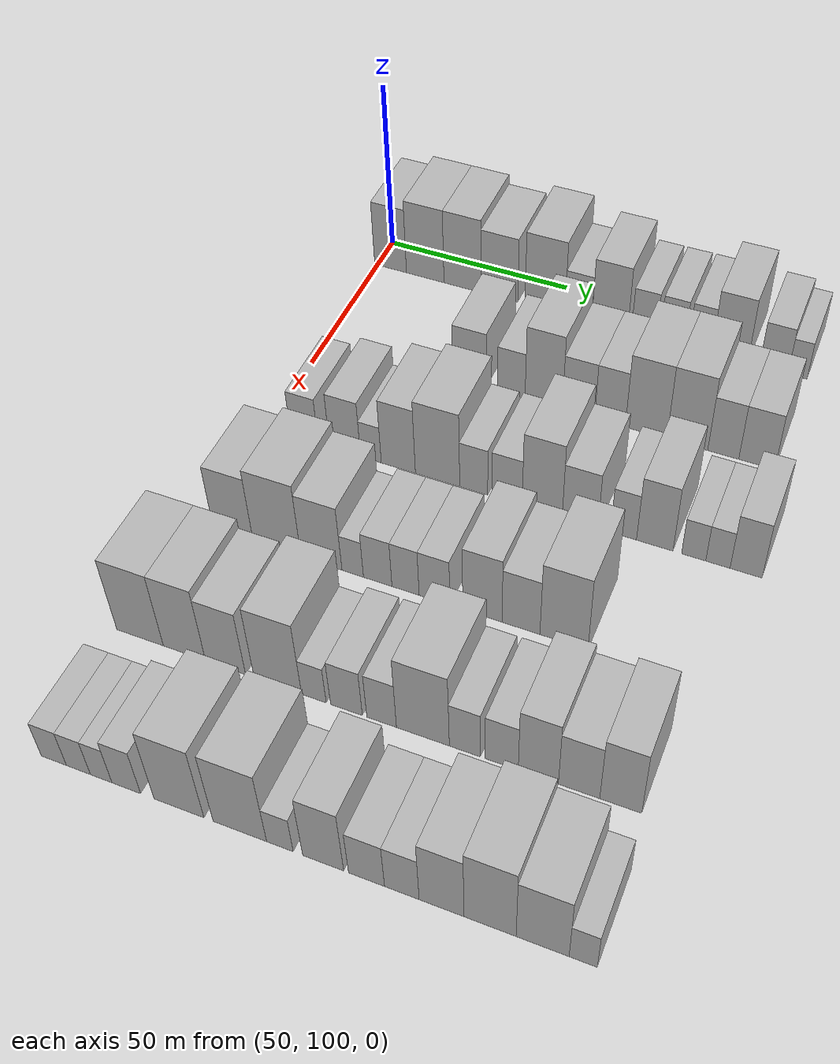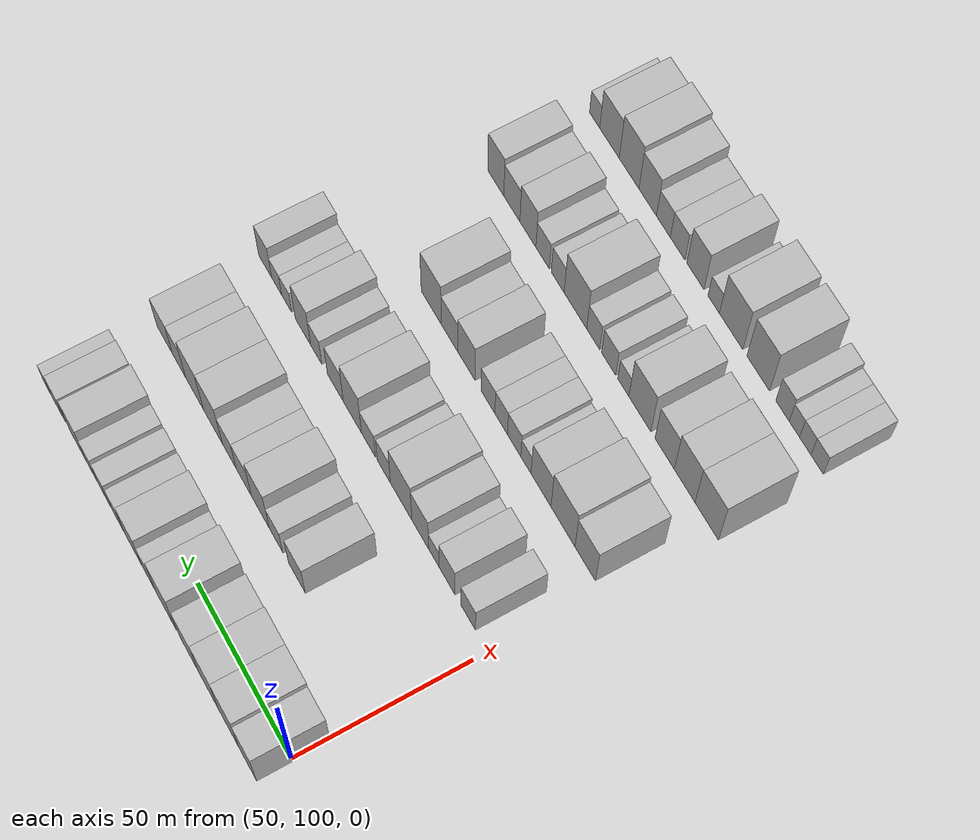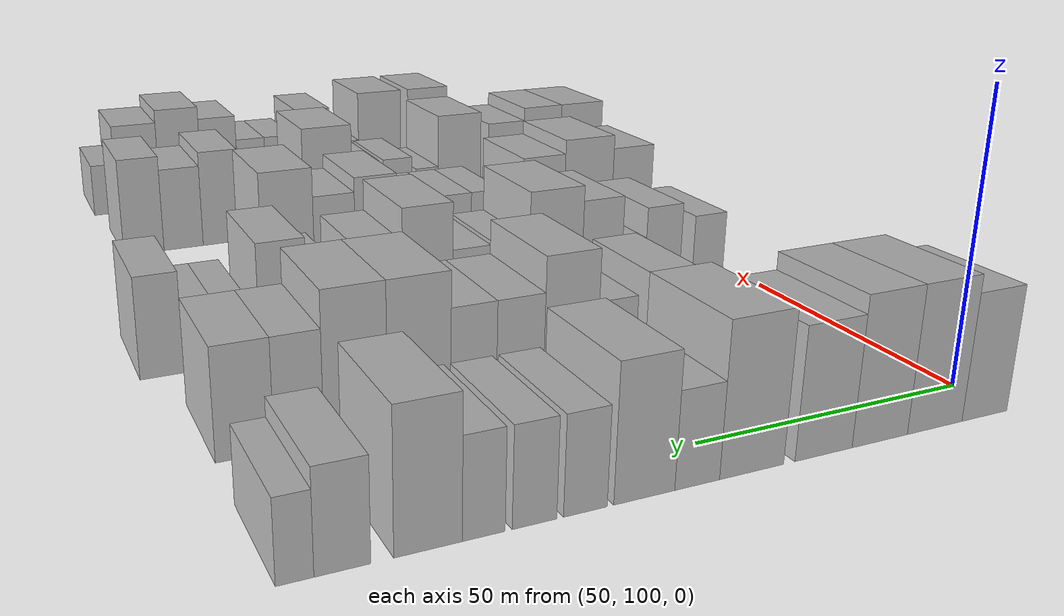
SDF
<sdf version="1.6">
 <world name="default">
  <model name="building_75">
   <static>1</static>
   <pose>50.0000 103.7794 0 0.000000 0.000000 0.000000</pose>
   <link name="link">
    <pose>0 0 10.50 0 0 0</pose>
    <collision name="collision"><geometry><box><size>20.0000 9.2283 21.0000</size></box></geometry></collision>
    <visual name="visual">
     <cast_shadows>0</cast_shadows>
     <geometry><box><size>20.0000 9.2283 21.0000</size></box></geometry>
     <material>
      <script>
       <uri>model://HANNAS_wall/materials/scripts</uri>
       <uri>model://HANNAS_wall/materials/textures</uri>
       <name>vrc/HANNAS_wall</name>
      </script>
     </material>
    </visual>
   </link>
  </model>
  <model name="building_76">
   <static>1</static>
   <pose>50.0000 113.7919 0 0.000000 0.000000 0.000000</pose>
   <link name="link">
    <pose>0 0 12.00 0 0 0</pose>
    <collision name="collision"><geometry><box><size>20.0000 10.7967 24.0000</size></box></geometry></collision>
    <visual name="visual">
     <cast_shadows>0</cast_shadows>
     <geometry><box><size>20.0000 10.7967 24.0000</size></box></geometry>
     <material>
      <script>
       <uri>model://HANNAS_wall/materials/scripts</uri>
       <uri>model://HANNAS_wall/materials/textures</uri>
       <name>vrc/HANNAS_wall</name>
      </script>
     </material>
    </visual>
   </link>
  </model>
  <model name="building_77">
   <static>1</static>
   <pose>50.0000 124.4198 0 0.000000 0.000000 0.000000</pose>
   <link name="link">
    <pose>0 0 12.00 0 0 0</pose>
    <collision name="collision"><geometry><box><size>20.0000 10.4590 24.0000</size></box></geometry></collision>
    <visual name="visual">
     <cast_shadows>0</cast_shadows>
     <geometry><box><size>20.0000 10.4590 24.0000</size></box></geometry>
     <material>
      <script>
       <uri>model://HANNAS_wall/materials/scripts</uri>
       <uri>model://HANNAS_wall/materials/textures</uri>
       <name>vrc/HANNAS_wall</name>
      </script>
     </material>
    </visual>
   </link>
  </model>
  <model name="building_78">
   <static>1</static>
   <pose>50.0000 134.8119 0 0.000000 0.000000 0.000000</pose>
   <link name="link">
    <pose>0 0 10.50 0 0 0</pose>
    <collision name="collision"><geometry><box><size>20.0000 10.3253 21.0000</size></box></geometry></collision>
    <visual name="visual">
     <cast_shadows>0</cast_shadows>
     <geometry><box><size>20.0000 10.3253 21.0000</size></box></geometry>
     <material>
      <script>
       <uri>model://HANNAS_wall/materials/scripts</uri>
       <uri>model://HANNAS_wall/materials/textures</uri>
       <name>vrc/HANNAS_wall</name>
      </script>
     </material>
    </visual>
   </link>
  </model>
  <model name="building_79">
   <static>1</static>
   <pose>50.0000 147.4590 0 0.000000 0.000000 0.000000</pose>
   <link name="link">
    <pose>0 0 12.00 0 0 0</pose>
    <collision name="collision"><geometry><box><size>20.0000 10.9688 24.0000</size></box></geometry></collision>
    <visual name="visual">
     <cast_shadows>0</cast_shadows>
     <geometry><box><size>20.0000 10.9688 24.0000</size></box></geometry>
     <material>
      <script>
       <uri>model://HANNAS_wall/materials/scripts</uri>
       <uri>model://HANNAS_wall/materials/textures</uri>
       <name>vrc/HANNAS_wall</name>
      </script>
     </material>
    </visual>
   </link>
  </model>
  <model name="building_80">
   <static>1</static>
   <pose>50.0000 156.6160 0 0.000000 0.000000 0.000000</pose>
   <link name="link">
    <pose>0 0 7.50 0 0 0</pose>
    <collision name="collision"><geometry><box><size>20.0000 7.3453 15.0000</size></box></geometry></collision>
    <visual name="visual">
     <cast_shadows>0</cast_shadows>
     <geometry><box><size>20.0000 7.3453 15.0000</size></box></geometry>
     <material>
      <script>
       <uri>model://HANNAS_wall/materials/scripts</uri>
       <uri>model://HANNAS_wall/materials/textures</uri>
       <name>vrc/HANNAS_wall</name>
      </script>
     </material>
    </visual>
   </link>
  </model>
  <model name="building_81">
   <static>1</static>
   <pose>50.0000 165.1098 0 0.000000 0.000000 0.000000</pose>
   <link name="link">
    <pose>0 0 10.50 0 0 0</pose>
    <collision name="collision"><geometry><box><size>20.0000 9.6423 21.0000</size></box></geometry></collision>
    <visual name="visual">
     <cast_shadows>0</cast_shadows>
     <geometry><box><size>20.0000 9.6423 21.0000</size></box></geometry>
     <material>
      <script>
       <uri>model://HANNAS_wall/materials/scripts</uri>
       <uri>model://HANNAS_wall/materials/textures</uri>
       <name>vrc/HANNAS_wall</name>
      </script>
     </material>
    </visual>
   </link>
  </model>
  <model name="building_82">
   <static>1</static>
   <pose>50.0000 174.2379 0 0.000000 0.000000 0.000000</pose>
   <link name="link">
    <pose>0 0 7.50 0 0 0</pose>
    <collision name="collision"><geometry><box><size>20.0000 6.6140 15.0000</size></box></geometry></collision>
    <visual name="visual">
     <cast_shadows>0</cast_shadows>
     <geometry><box><size>20.0000 6.6140 15.0000</size></box></geometry>
     <material>
      <script>
       <uri>model://HANNAS_wall/materials/scripts</uri>
       <uri>model://HANNAS_wall/materials/textures</uri>
       <name>vrc/HANNAS_wall</name>
      </script>
     </material>
    </visual>
   </link>
  </model>
  <model name="building_83">
   <static>1</static>
   <pose>50.0000 181.7991 0 0.000000 0.000000 0.000000</pose>
   <link name="link">
    <pose>0 0 7.50 0 0 0</pose>
    <collision name="collision"><geometry><box><size>20.0000 6.5085 15.0000</size></box></geometry></collision>
    <visual name="visual">
     <cast_shadows>0</cast_shadows>
     <geometry><box><size>20.0000 6.5085 15.0000</size></box></geometry>
     <material>
      <script>
       <uri>model://HANNAS_wall/materials/scripts</uri>
       <uri>model://HANNAS_wall/materials/textures</uri>
       <name>vrc/HANNAS_wall</name>
      </script>
     </material>
    </visual>
   </link>
  </model>
  <model name="building_84">
   <static>1</static>
   <pose>50.0000 189.0756 0 0.000000 0.000000 0.000000</pose>
   <link name="link">
    <pose>0 0 7.50 0 0 0</pose>
    <collision name="collision"><geometry><box><size>20.0000 6.0446 15.0000</size></box></geometry></collision>
    <visual name="visual">
     <cast_shadows>0</cast_shadows>
     <geometry><box><size>20.0000 6.0446 15.0000</size></box></geometry>
     <material>
      <script>
       <uri>model://HANNAS_wall/materials/scripts</uri>
       <uri>model://HANNAS_wall/materials/textures</uri>
       <name>vrc/HANNAS_wall</name>
      </script>
     </material>
    </visual>
   </link>
  </model>
  <model name="building_85">
   <static>1</static>
   <pose>50.0000 196.7455 0 0.000000 0.000000 0.000000</pose>
   <link name="link">
    <pose>0 0 10.50 0 0 0</pose>
    <collision name="collision"><geometry><box><size>20.0000 9.2951 21.0000</size></box></geometry></collision>
    <visual name="visual">
     <cast_shadows>0</cast_shadows>
     <geometry><box><size>20.0000 9.2951 21.0000</size></box></geometry>
     <material>
      <script>
       <uri>model://HANNAS_wall/materials/scripts</uri>
       <uri>model://HANNAS_wall/materials/textures</uri>
       <name>vrc/HANNAS_wall</name>
      </script>
     </material>
    </visual>
   </link>
  </model>
  <model name="building_86">
   <static>1</static>
   <pose>50.0000 208.0315 0 0.000000 0.000000 0.000000</pose>
   <link name="link">
    <pose>0 0 7.50 0 0 0</pose>
    <collision name="collision"><geometry><box><size>20.0000 7.2769 15.0000</size></box></geometry></collision>
    <visual name="visual">
     <cast_shadows>0</cast_shadows>
     <geometry><box><size>20.0000 7.2769 15.0000</size></box></geometry>
     <material>
      <script>
       <uri>model://HANNAS_wall/materials/scripts</uri>
       <uri>model://HANNAS_wall/materials/textures</uri>
       <name>vrc/HANNAS_wall</name>
      </script>
     </material>
    </visual>
   </link>
  </model>
  <model name="building_87">
   <static>1</static>
   <pose>50.0000 214.0744 0 0.000000 0.000000 0.000000</pose>
   <link name="link">
    <pose>0 0 6.00 0 0 0</pose>
    <collision name="collision"><geometry><box><size>20.0000 4.8089 12.0000</size></box></geometry></collision>
    <visual name="visual">
     <cast_shadows>0</cast_shadows>
     <geometry><box><size>20.0000 4.8089 12.0000</size></box></geometry>
     <material>
      <script>
       <uri>model://HANNAS_wall/materials/scripts</uri>
       <uri>model://HANNAS_wall/materials/textures</uri>
       <name>vrc/HANNAS_wall</name>
      </script>
     </material>
    </visual>
   </link>
  </model>
  <model name="building_200">
   <static>1</static>
   <pose>82.0000 139.2807 0 0.000000 0.000000 0.000000</pose>
   <link name="link">
    <pose>0 0 9.00 0 0 0</pose>
    <collision name="collision"><geometry><box><size>20.0000 8.8967 18.0000</size></box></geometry></collision>
    <visual name="visual">
     <cast_shadows>0</cast_shadows>
     <geometry><box><size>20.0000 8.8967 18.0000</size></box></geometry>
     <material>
      <script>
       <uri>model://HANNAS_wall/materials/scripts</uri>
       <uri>model://HANNAS_wall/materials/textures</uri>
       <name>vrc/HANNAS_wall</name>
      </script>
     </material>
    </visual>
   </link>
  </model>
  <model name="building_201">
   <static>1</static>
   <pose>82.0000 150.3356 0 0.000000 0.000000 0.000000</pose>
   <link name="link">
    <pose>0 0 7.50 0 0 0</pose>
    <collision name="collision"><geometry><box><size>20.0000 7.2130 15.0000</size></box></geometry></collision>
    <visual name="visual">
     <cast_shadows>0</cast_shadows>
     <geometry><box><size>20.0000 7.2130 15.0000</size></box></geometry>
     <material>
      <script>
       <uri>model://HANNAS_wall/materials/scripts</uri>
       <uri>model://HANNAS_wall/materials/textures</uri>
       <name>vrc/HANNAS_wall</name>
      </script>
     </material>
    </visual>
   </link>
  </model>
  <model name="building_202">
   <static>1</static>
   <pose>82.0000 158.7795 0 0.000000 0.000000 0.000000</pose>
   <link name="link">
    <pose>0 0 12.00 0 0 0</pose>
    <collision name="collision"><geometry><box><size>20.0000 9.6750 24.0000</size></box></geometry></collision>
    <visual name="visual">
     <cast_shadows>0</cast_shadows>
     <geometry><box><size>20.0000 9.6750 24.0000</size></box></geometry>
     <material>
      <script>
       <uri>model://HANNAS_wall/materials/scripts</uri>
       <uri>model://HANNAS_wall/materials/textures</uri>
       <name>vrc/HANNAS_wall</name>
      </script>
     </material>
    </visual>
   </link>
  </model>
  <model name="building_203">
   <static>1</static>
   <pose>82.0000 167.7445 0 0.000000 0.000000 0.000000</pose>
   <link name="link">
    <pose>0 0 9.00 0 0 0</pose>
    <collision name="collision"><geometry><box><size>20.0000 8.2549 18.0000</size></box></geometry></collision>
    <visual name="visual">
     <cast_shadows>0</cast_shadows>
     <geometry><box><size>20.0000 8.2549 18.0000</size></box></geometry>
     <material>
      <script>
       <uri>model://HANNAS_wall/materials/scripts</uri>
       <uri>model://HANNAS_wall/materials/textures</uri>
       <name>vrc/HANNAS_wall</name>
      </script>
     </material>
    </visual>
   </link>
  </model>
  <model name="building_204">
   <static>1</static>
   <pose>82.0000 175.7410 0 0.000000 0.000000 0.000000</pose>
   <link name="link">
    <pose>0 0 9.00 0 0 0</pose>
    <collision name="collision"><geometry><box><size>20.0000 7.7383 18.0000</size></box></geometry></collision>
    <visual name="visual">
     <cast_shadows>0</cast_shadows>
     <geometry><box><size>20.0000 7.7383 18.0000</size></box></geometry>
     <material>
      <script>
       <uri>model://HANNAS_wall/materials/scripts</uri>
       <uri>model://HANNAS_wall/materials/textures</uri>
       <name>vrc/HANNAS_wall</name>
      </script>
     </material>
    </visual>
   </link>
  </model>
  <model name="building_205">
   <static>1</static>
   <pose>82.0000 184.8113 0 0.000000 0.000000 0.000000</pose>
   <link name="link">
    <pose>0 0 12.00 0 0 0</pose>
    <collision name="collision"><geometry><box><size>20.0000 10.4023 24.0000</size></box></geometry></collision>
    <visual name="visual">
     <cast_shadows>0</cast_shadows>
     <geometry><box><size>20.0000 10.4023 24.0000</size></box></geometry>
     <material>
      <script>
       <uri>model://HANNAS_wall/materials/scripts</uri>
       <uri>model://HANNAS_wall/materials/textures</uri>
       <name>vrc/HANNAS_wall</name>
      </script>
     </material>
    </visual>
   </link>
  </model>
  <model name="building_206">
   <static>1</static>
   <pose>82.0000 195.0407 0 0.000000 0.000000 0.000000</pose>
   <link name="link">
    <pose>0 0 12.00 0 0 0</pose>
    <collision name="collision"><geometry><box><size>20.0000 10.0565 24.0000</size></box></geometry></collision>
    <visual name="visual">
     <cast_shadows>0</cast_shadows>
     <geometry><box><size>20.0000 10.0565 24.0000</size></box></geometry>
     <material>
      <script>
       <uri>model://HANNAS_wall/materials/scripts</uri>
       <uri>model://HANNAS_wall/materials/textures</uri>
       <name>vrc/HANNAS_wall</name>
      </script>
     </material>
    </visual>
   </link>
  </model>
  <model name="building_207">
   <static>1</static>
   <pose>82.0000 203.8482 0 0.000000 0.000000 0.000000</pose>
   <link name="link">
    <pose>0 0 9.00 0 0 0</pose>
    <collision name="collision"><geometry><box><size>20.0000 7.5584 18.0000</size></box></geometry></collision>
    <visual name="visual">
     <cast_shadows>0</cast_shadows>
     <geometry><box><size>20.0000 7.5584 18.0000</size></box></geometry>
     <material>
      <script>
       <uri>model://HANNAS_wall/materials/scripts</uri>
       <uri>model://HANNAS_wall/materials/textures</uri>
       <name>vrc/HANNAS_wall</name>
      </script>
     </material>
    </visual>
   </link>
  </model>
  <model name="building_208">
   <static>1</static>
   <pose>82.0000 211.9549 0 0.000000 0.000000 0.000000</pose>
   <link name="link">
    <pose>0 0 9.00 0 0 0</pose>
    <collision name="collision"><geometry><box><size>20.0000 8.6549 18.0000</size></box></geometry></collision>
    <visual name="visual">
     <cast_shadows>0</cast_shadows>
     <geometry><box><size>20.0000 8.6549 18.0000</size></box></geometry>
     <material>
      <script>
       <uri>model://HANNAS_wall/materials/scripts</uri>
       <uri>model://HANNAS_wall/materials/textures</uri>
       <name>vrc/HANNAS_wall</name>
      </script>
     </material>
    </visual>
   </link>
  </model>
  <model name="building_318">
   <static>1</static>
   <pose>114.0000 109.8796 0 0.000000 0.000000 0.000000</pose>
   <link name="link">
    <pose>0 0 7.50 0 0 0</pose>
    <collision name="collision"><geometry><box><size>20.0000 7.2691 15.0000</size></box></geometry></collision>
    <visual name="visual">
     <cast_shadows>0</cast_shadows>
     <geometry><box><size>20.0000 7.2691 15.0000</size></box></geometry>
     <material>
      <script>
       <uri>model://HANNAS_wall/materials/scripts</uri>
       <uri>model://HANNAS_wall/materials/textures</uri>
       <name>vrc/HANNAS_wall</name>
      </script>
     </material>
    </visual>
   </link>
  </model>
  <model name="building_319">
   <static>1</static>
   <pose>114.0000 120.5373 0 0.000000 0.000000 0.000000</pose>
   <link name="link">
    <pose>0 0 9.00 0 0 0</pose>
    <collision name="collision"><geometry><box><size>20.0000 8.0462 18.0000</size></box></geometry></collision>
    <visual name="visual">
     <cast_shadows>0</cast_shadows>
     <geometry><box><size>20.0000 8.0462 18.0000</size></box></geometry>
     <material>
      <script>
       <uri>model://HANNAS_wall/materials/scripts</uri>
       <uri>model://HANNAS_wall/materials/textures</uri>
       <name>vrc/HANNAS_wall</name>
      </script>
     </material>
    </visual>
   </link>
  </model>
  <model name="building_320">
   <static>1</static>
   <pose>114.0000 127.2282 0 0.000000 0.000000 0.000000</pose>
   <link name="link">
    <pose>0 0 6.00 0 0 0</pose>
    <collision name="collision"><geometry><box><size>20.0000 5.3355 12.0000</size></box></geometry></collision>
    <visual name="visual">
     <cast_shadows>0</cast_shadows>
     <geometry><box><size>20.0000 5.3355 12.0000</size></box></geometry>
     <material>
      <script>
       <uri>model://HANNAS_wall/materials/scripts</uri>
       <uri>model://HANNAS_wall/materials/textures</uri>
       <name>vrc/HANNAS_wall</name>
      </script>
     </material>
    </visual>
   </link>
  </model>
  <model name="building_321">
   <static>1</static>
   <pose>114.0000 134.2509 0 0.000000 0.000000 0.000000</pose>
   <link name="link">
    <pose>0 0 10.50 0 0 0</pose>
    <collision name="collision"><geometry><box><size>20.0000 8.7100 21.0000</size></box></geometry></collision>
    <visual name="visual">
     <cast_shadows>0</cast_shadows>
     <geometry><box><size>20.0000 8.7100 21.0000</size></box></geometry>
     <material>
      <script>
       <uri>model://HANNAS_wall/materials/scripts</uri>
       <uri>model://HANNAS_wall/materials/textures</uri>
       <name>vrc/HANNAS_wall</name>
      </script>
     </material>
    </visual>
   </link>
  </model>
  <model name="building_322">
   <static>1</static>
   <pose>114.0000 144.1935 0 0.000000 0.000000 0.000000</pose>
   <link name="link">
    <pose>0 0 12.00 0 0 0</pose>
    <collision name="collision"><geometry><box><size>20.0000 11.1750 24.0000</size></box></geometry></collision>
    <visual name="visual">
     <cast_shadows>0</cast_shadows>
     <geometry><box><size>20.0000 11.1750 24.0000</size></box></geometry>
     <material>
      <script>
       <uri>model://HANNAS_wall/materials/scripts</uri>
       <uri>model://HANNAS_wall/materials/textures</uri>
       <name>vrc/HANNAS_wall</name>
      </script>
     </material>
    </visual>
   </link>
  </model>
  <model name="building_323">
   <static>1</static>
   <pose>114.0000 153.2524 0 0.000000 0.000000 0.000000</pose>
   <link name="link">
    <pose>0 0 7.50 0 0 0</pose>
    <collision name="collision"><geometry><box><size>20.0000 6.9428 15.0000</size></box></geometry></collision>
    <visual name="visual">
     <cast_shadows>0</cast_shadows>
     <geometry><box><size>20.0000 6.9428 15.0000</size></box></geometry>
     <material>
      <script>
       <uri>model://HANNAS_wall/materials/scripts</uri>
       <uri>model://HANNAS_wall/materials/textures</uri>
       <name>vrc/HANNAS_wall</name>
      </script>
     </material>
    </visual>
   </link>
  </model>
  <model name="building_324">
   <static>1</static>
   <pose>114.0000 161.4466 0 0.000000 0.000000 0.000000</pose>
   <link name="link">
    <pose>0 0 7.50 0 0 0</pose>
    <collision name="collision"><geometry><box><size>20.0000 7.4456 15.0000</size></box></geometry></collision>
    <visual name="visual">
     <cast_shadows>0</cast_shadows>
     <geometry><box><size>20.0000 7.4456 15.0000</size></box></geometry>
     <material>
      <script>
       <uri>model://HANNAS_wall/materials/scripts</uri>
       <uri>model://HANNAS_wall/materials/textures</uri>
       <name>vrc/HANNAS_wall</name>
      </script>
     </material>
    </visual>
   </link>
  </model>
  <model name="building_325">
   <static>1</static>
   <pose>114.0000 170.0361 0 0.000000 0.000000 0.000000</pose>
   <link name="link">
    <pose>0 0 12.00 0 0 0</pose>
    <collision name="collision"><geometry><box><size>20.0000 9.7334 24.0000</size></box></geometry></collision>
    <visual name="visual">
     <cast_shadows>0</cast_shadows>
     <geometry><box><size>20.0000 9.7334 24.0000</size></box></geometry>
     <material>
      <script>
       <uri>model://HANNAS_wall/materials/scripts</uri>
       <uri>model://HANNAS_wall/materials/textures</uri>
       <name>vrc/HANNAS_wall</name>
      </script>
     </material>
    </visual>
   </link>
  </model>
  <model name="building_326">
   <static>1</static>
   <pose>114.0000 179.1842 0 0.000000 0.000000 0.000000</pose>
   <link name="link">
    <pose>0 0 9.00 0 0 0</pose>
    <collision name="collision"><geometry><box><size>20.0000 8.5629 18.0000</size></box></geometry></collision>
    <visual name="visual">
     <cast_shadows>0</cast_shadows>
     <geometry><box><size>20.0000 8.5629 18.0000</size></box></geometry>
     <material>
      <script>
       <uri>model://HANNAS_wall/materials/scripts</uri>
       <uri>model://HANNAS_wall/materials/textures</uri>
       <name>vrc/HANNAS_wall</name>
      </script>
     </material>
    </visual>
   </link>
  </model>
  <model name="building_327">
   <static>1</static>
   <pose>114.0000 189.5157 0 0.000000 0.000000 0.000000</pose>
   <link name="link">
    <pose>0 0 7.50 0 0 0</pose>
    <collision name="collision"><geometry><box><size>20.0000 6.1001 15.0000</size></box></geometry></collision>
    <visual name="visual">
     <cast_shadows>0</cast_shadows>
     <geometry><box><size>20.0000 6.1001 15.0000</size></box></geometry>
     <material>
      <script>
       <uri>model://HANNAS_wall/materials/scripts</uri>
       <uri>model://HANNAS_wall/materials/textures</uri>
       <name>vrc/HANNAS_wall</name>
      </script>
     </material>
    </visual>
   </link>
  </model>
  <model name="building_328">
   <static>1</static>
   <pose>114.0000 196.8187 0 0.000000 0.000000 0.000000</pose>
   <link name="link">
    <pose>0 0 10.50 0 0 0</pose>
    <collision name="collision"><geometry><box><size>20.0000 8.5059 21.0000</size></box></geometry></collision>
    <visual name="visual">
     <cast_shadows>0</cast_shadows>
     <geometry><box><size>20.0000 8.5059 21.0000</size></box></geometry>
     <material>
      <script>
       <uri>model://HANNAS_wall/materials/scripts</uri>
       <uri>model://HANNAS_wall/materials/textures</uri>
       <name>vrc/HANNAS_wall</name>
      </script>
     </material>
    </visual>
   </link>
  </model>
  <model name="building_329">
   <static>1</static>
   <pose>114.0000 205.8523 0 0.000000 0.000000 0.000000</pose>
   <link name="link">
    <pose>0 0 6.00 0 0 0</pose>
    <collision name="collision"><geometry><box><size>20.0000 5.5614 12.0000</size></box></geometry></collision>
    <visual name="visual">
     <cast_shadows>0</cast_shadows>
     <geometry><box><size>20.0000 5.5614 12.0000</size></box></geometry>
     <material>
      <script>
       <uri>model://HANNAS_wall/materials/scripts</uri>
       <uri>model://HANNAS_wall/materials/textures</uri>
       <name>vrc/HANNAS_wall</name>
      </script>
     </material>
    </visual>
   </link>
  </model>
  <model name="building_330">
   <static>1</static>
   <pose>114.0000 211.3989 0 0.000000 0.000000 0.000000</pose>
   <link name="link">
    <pose>0 0 6.00 0 0 0</pose>
    <collision name="collision"><geometry><box><size>20.0000 5.5320 12.0000</size></box></geometry></collision>
    <visual name="visual">
     <cast_shadows>0</cast_shadows>
     <geometry><box><size>20.0000 5.5320 12.0000</size></box></geometry>
     <material>
      <script>
       <uri>model://HANNAS_wall/materials/scripts</uri>
       <uri>model://HANNAS_wall/materials/textures</uri>
       <name>vrc/HANNAS_wall</name>
      </script>
     </material>
    </visual>
   </link>
  </model>
  <model name="building_331">
   <static>1</static>
   <pose>114.0000 217.7903 0 0.000000 0.000000 0.000000</pose>
   <link name="link">
    <pose>0 0 9.00 0 0 0</pose>
    <collision name="collision"><geometry><box><size>20.0000 7.2507 18.0000</size></box></geometry></collision>
    <visual name="visual">
     <cast_shadows>0</cast_shadows>
     <geometry><box><size>20.0000 7.2507 18.0000</size></box></geometry>
     <material>
      <script>
       <uri>model://HANNAS_wall/materials/scripts</uri>
       <uri>model://HANNAS_wall/materials/textures</uri>
       <name>vrc/HANNAS_wall</name>
      </script>
     </material>
    </visual>
   </link>
  </model>
  <model name="building_443">
   <static>1</static>
   <pose>146.0000 107.8235 0 0.000000 0.000000 0.000000</pose>
   <link name="link">
    <pose>0 0 10.50 0 0 0</pose>
    <collision name="collision"><geometry><box><size>20.0000 10.0783 21.0000</size></box></geometry></collision>
    <visual name="visual">
     <cast_shadows>0</cast_shadows>
     <geometry><box><size>20.0000 10.0783 21.0000</size></box></geometry>
     <material>
      <script>
       <uri>model://HANNAS_wall/materials/scripts</uri>
       <uri>model://HANNAS_wall/materials/textures</uri>
       <name>vrc/HANNAS_wall</name>
      </script>
     </material>
    </visual>
   </link>
  </model>
  <model name="building_444">
   <static>1</static>
   <pose>146.0000 118.8312 0 0.000000 0.000000 0.000000</pose>
   <link name="link">
    <pose>0 0 12.00 0 0 0</pose>
    <collision name="collision"><geometry><box><size>20.0000 11.9370 24.0000</size></box></geometry></collision>
    <visual name="visual">
     <cast_shadows>0</cast_shadows>
     <geometry><box><size>20.0000 11.9370 24.0000</size></box></geometry>
     <material>
      <script>
       <uri>model://HANNAS_wall/materials/scripts</uri>
       <uri>model://HANNAS_wall/materials/textures</uri>
       <name>vrc/HANNAS_wall</name>
      </script>
     </material>
    </visual>
   </link>
  </model>
  <model name="building_445">
   <static>1</static>
   <pose>146.0000 129.8116 0 0.000000 0.000000 0.000000</pose>
   <link name="link">
    <pose>0 0 10.50 0 0 0</pose>
    <collision name="collision"><geometry><box><size>20.0000 10.0240 21.0000</size></box></geometry></collision>
    <visual name="visual">
     <cast_shadows>0</cast_shadows>
     <geometry><box><size>20.0000 10.0240 21.0000</size></box></geometry>
     <material>
      <script>
       <uri>model://HANNAS_wall/materials/scripts</uri>
       <uri>model://HANNAS_wall/materials/textures</uri>
       <name>vrc/HANNAS_wall</name>
      </script>
     </material>
    </visual>
   </link>
  </model>
  <model name="building_446">
   <static>1</static>
   <pose>146.0000 137.4242 0 0.000000 0.000000 0.000000</pose>
   <link name="link">
    <pose>0 0 6.00 0 0 0</pose>
    <collision name="collision"><geometry><box><size>20.0000 5.2013 12.0000</size></box></geometry></collision>
    <visual name="visual">
     <cast_shadows>0</cast_shadows>
     <geometry><box><size>20.0000 5.2013 12.0000</size></box></geometry>
     <material>
      <script>
       <uri>model://HANNAS_wall/materials/scripts</uri>
       <uri>model://HANNAS_wall/materials/textures</uri>
       <name>vrc/HANNAS_wall</name>
      </script>
     </material>
    </visual>
   </link>
  </model>
  <model name="building_447">
   <static>1</static>
   <pose>146.0000 143.4416 0 0.000000 0.000000 0.000000</pose>
   <link name="link">
    <pose>0 0 7.50 0 0 0</pose>
    <collision name="collision"><geometry><box><size>20.0000 6.8334 15.0000</size></box></geometry></collision>
    <visual name="visual">
     <cast_shadows>0</cast_shadows>
     <geometry><box><size>20.0000 6.8334 15.0000</size></box></geometry>
     <material>
      <script>
       <uri>model://HANNAS_wall/materials/scripts</uri>
       <uri>model://HANNAS_wall/materials/textures</uri>
       <name>vrc/HANNAS_wall</name>
      </script>
     </material>
    </visual>
   </link>
  </model>
  <model name="building_448">
   <static>1</static>
   <pose>146.0000 150.0863 0 0.000000 0.000000 0.000000</pose>
   <link name="link">
    <pose>0 0 7.50 0 0 0</pose>
    <collision name="collision"><geometry><box><size>20.0000 6.4559 15.0000</size></box></geometry></collision>
    <visual name="visual">
     <cast_shadows>0</cast_shadows>
     <geometry><box><size>20.0000 6.4559 15.0000</size></box></geometry>
     <material>
      <script>
       <uri>model://HANNAS_wall/materials/scripts</uri>
       <uri>model://HANNAS_wall/materials/textures</uri>
       <name>vrc/HANNAS_wall</name>
      </script>
     </material>
    </visual>
   </link>
  </model>
  <model name="building_449">
   <static>1</static>
   <pose>146.0000 156.9384 0 0.000000 0.000000 0.000000</pose>
   <link name="link">
    <pose>0 0 7.50 0 0 0</pose>
    <collision name="collision"><geometry><box><size>20.0000 7.2483 15.0000</size></box></geometry></collision>
    <visual name="visual">
     <cast_shadows>0</cast_shadows>
     <geometry><box><size>20.0000 7.2483 15.0000</size></box></geometry>
     <material>
      <script>
       <uri>model://HANNAS_wall/materials/scripts</uri>
       <uri>model://HANNAS_wall/materials/textures</uri>
       <name>vrc/HANNAS_wall</name>
      </script>
     </material>
    </visual>
   </link>
  </model>
  <model name="building_450">
   <static>1</static>
   <pose>146.0000 168.0801 0 0.000000 0.000000 0.000000</pose>
   <link name="link">
    <pose>0 0 10.50 0 0 0</pose>
    <collision name="collision"><geometry><box><size>20.0000 9.0352 21.0000</size></box></geometry></collision>
    <visual name="visual">
     <cast_shadows>0</cast_shadows>
     <geometry><box><size>20.0000 9.0352 21.0000</size></box></geometry>
     <material>
      <script>
       <uri>model://HANNAS_wall/materials/scripts</uri>
       <uri>model://HANNAS_wall/materials/textures</uri>
       <name>vrc/HANNAS_wall</name>
      </script>
     </material>
    </visual>
   </link>
  </model>
  <model name="building_451">
   <static>1</static>
   <pose>146.0000 176.9114 0 0.000000 0.000000 0.000000</pose>
   <link name="link">
    <pose>0 0 9.00 0 0 0</pose>
    <collision name="collision"><geometry><box><size>20.0000 8.6273 18.0000</size></box></geometry></collision>
    <visual name="visual">
     <cast_shadows>0</cast_shadows>
     <geometry><box><size>20.0000 8.6273 18.0000</size></box></geometry>
     <material>
      <script>
       <uri>model://HANNAS_wall/materials/scripts</uri>
       <uri>model://HANNAS_wall/materials/textures</uri>
       <name>vrc/HANNAS_wall</name>
      </script>
     </material>
    </visual>
   </link>
  </model>
  <model name="building_452">
   <static>1</static>
   <pose>146.0000 186.6075 0 0.000000 0.000000 0.000000</pose>
   <link name="link">
    <pose>0 0 12.00 0 0 0</pose>
    <collision name="collision"><geometry><box><size>20.0000 10.7649 24.0000</size></box></geometry></collision>
    <visual name="visual">
     <cast_shadows>0</cast_shadows>
     <geometry><box><size>20.0000 10.7649 24.0000</size></box></geometry>
     <material>
      <script>
       <uri>model://HANNAS_wall/materials/scripts</uri>
       <uri>model://HANNAS_wall/materials/textures</uri>
       <name>vrc/HANNAS_wall</name>
      </script>
     </material>
    </visual>
   </link>
  </model>
  <model name="building_559">
   <static>1</static>
   <pose>178.0000 102.6360 0 0.000000 0.000000 0.000000</pose>
   <link name="link">
    <pose>0 0 12.00 0 0 0</pose>
    <collision name="collision"><geometry><box><size>20.0000 11.2996 24.0000</size></box></geometry></collision>
    <visual name="visual">
     <cast_shadows>0</cast_shadows>
     <geometry><box><size>20.0000 11.2996 24.0000</size></box></geometry>
     <material>
      <script>
       <uri>model://HANNAS_wall/materials/scripts</uri>
       <uri>model://HANNAS_wall/materials/textures</uri>
       <name>vrc/HANNAS_wall</name>
      </script>
     </material>
    </visual>
   </link>
  </model>
  <model name="building_560">
   <static>1</static>
   <pose>178.0000 113.3321 0 0.000000 0.000000 0.000000</pose>
   <link name="link">
    <pose>0 0 12.00 0 0 0</pose>
    <collision name="collision"><geometry><box><size>20.0000 10.0926 24.0000</size></box></geometry></collision>
    <visual name="visual">
     <cast_shadows>0</cast_shadows>
     <geometry><box><size>20.0000 10.0926 24.0000</size></box></geometry>
     <material>
      <script>
       <uri>model://HANNAS_wall/materials/scripts</uri>
       <uri>model://HANNAS_wall/materials/textures</uri>
       <name>vrc/HANNAS_wall</name>
      </script>
     </material>
    </visual>
   </link>
  </model>
  <model name="building_561">
   <static>1</static>
   <pose>178.0000 123.0897 0 0.000000 0.000000 0.000000</pose>
   <link name="link">
    <pose>0 0 10.50 0 0 0</pose>
    <collision name="collision"><geometry><box><size>20.0000 9.4227 21.0000</size></box></geometry></collision>
    <visual name="visual">
     <cast_shadows>0</cast_shadows>
     <geometry><box><size>20.0000 9.4227 21.0000</size></box></geometry>
     <material>
      <script>
       <uri>model://HANNAS_wall/materials/scripts</uri>
       <uri>model://HANNAS_wall/materials/textures</uri>
       <name>vrc/HANNAS_wall</name>
      </script>
     </material>
    </visual>
   </link>
  </model>
  <model name="building_562">
   <static>1</static>
   <pose>178.0000 135.2790 0 0.000000 0.000000 0.000000</pose>
   <link name="link">
    <pose>0 0 12.00 0 0 0</pose>
    <collision name="collision"><geometry><box><size>20.0000 10.9559 24.0000</size></box></geometry></collision>
    <visual name="visual">
     <cast_shadows>0</cast_shadows>
     <geometry><box><size>20.0000 10.9559 24.0000</size></box></geometry>
     <material>
      <script>
       <uri>model://HANNAS_wall/materials/scripts</uri>
       <uri>model://HANNAS_wall/materials/textures</uri>
       <name>vrc/HANNAS_wall</name>
      </script>
     </material>
    </visual>
   </link>
  </model>
  <model name="building_563">
   <static>1</static>
   <pose>178.0000 143.5608 0 0.000000 0.000000 0.000000</pose>
   <link name="link">
    <pose>0 0 6.00 0 0 0</pose>
    <collision name="collision"><geometry><box><size>20.0000 5.6076 12.0000</size></box></geometry></collision>
    <visual name="visual">
     <cast_shadows>0</cast_shadows>
     <geometry><box><size>20.0000 5.6076 12.0000</size></box></geometry>
     <material>
      <script>
       <uri>model://HANNAS_wall/materials/scripts</uri>
       <uri>model://HANNAS_wall/materials/textures</uri>
       <name>vrc/HANNAS_wall</name>
      </script>
     </material>
    </visual>
   </link>
  </model>
  <model name="building_564">
   <static>1</static>
   <pose>178.0000 150.9274 0 0.000000 0.000000 0.000000</pose>
   <link name="link">
    <pose>0 0 7.50 0 0 0</pose>
    <collision name="collision"><geometry><box><size>20.0000 7.1257 15.0000</size></box></geometry></collision>
    <visual name="visual">
     <cast_shadows>0</cast_shadows>
     <geometry><box><size>20.0000 7.1257 15.0000</size></box></geometry>
     <material>
      <script>
       <uri>model://HANNAS_wall/materials/scripts</uri>
       <uri>model://HANNAS_wall/materials/textures</uri>
       <name>vrc/HANNAS_wall</name>
      </script>
     </material>
    </visual>
   </link>
  </model>
  <model name="building_565">
   <static>1</static>
   <pose>178.0000 158.7800 0 0.000000 0.000000 0.000000</pose>
   <link name="link">
    <pose>0 0 7.50 0 0 0</pose>
    <collision name="collision"><geometry><box><size>20.0000 6.5796 15.0000</size></box></geometry></collision>
    <visual name="visual">
     <cast_shadows>0</cast_shadows>
     <geometry><box><size>20.0000 6.5796 15.0000</size></box></geometry>
     <material>
      <script>
       <uri>model://HANNAS_wall/materials/scripts</uri>
       <uri>model://HANNAS_wall/materials/textures</uri>
       <name>vrc/HANNAS_wall</name>
      </script>
     </material>
    </visual>
   </link>
  </model>
  <model name="building_566">
   <static>1</static>
   <pose>178.0000 167.8540 0 0.000000 0.000000 0.000000</pose>
   <link name="link">
    <pose>0 0 12.00 0 0 0</pose>
    <collision name="collision"><geometry><box><size>20.0000 11.5683 24.0000</size></box></geometry></collision>
    <visual name="visual">
     <cast_shadows>0</cast_shadows>
     <geometry><box><size>20.0000 11.5683 24.0000</size></box></geometry>
     <material>
      <script>
       <uri>model://HANNAS_wall/materials/scripts</uri>
       <uri>model://HANNAS_wall/materials/textures</uri>
       <name>vrc/HANNAS_wall</name>
      </script>
     </material>
    </visual>
   </link>
  </model>
  <model name="building_567">
   <static>1</static>
   <pose>178.0000 176.9859 0 0.000000 0.000000 0.000000</pose>
   <link name="link">
    <pose>0 0 7.50 0 0 0</pose>
    <collision name="collision"><geometry><box><size>20.0000 6.6956 15.0000</size></box></geometry></collision>
    <visual name="visual">
     <cast_shadows>0</cast_shadows>
     <geometry><box><size>20.0000 6.6956 15.0000</size></box></geometry>
     <material>
      <script>
       <uri>model://HANNAS_wall/materials/scripts</uri>
       <uri>model://HANNAS_wall/materials/textures</uri>
       <name>vrc/HANNAS_wall</name>
      </script>
     </material>
    </visual>
   </link>
  </model>
  <model name="building_568">
   <static>1</static>
   <pose>178.0000 184.8477 0 0.000000 0.000000 0.000000</pose>
   <link name="link">
    <pose>0 0 7.50 0 0 0</pose>
    <collision name="collision"><geometry><box><size>20.0000 7.0279 15.0000</size></box></geometry></collision>
    <visual name="visual">
     <cast_shadows>0</cast_shadows>
     <geometry><box><size>20.0000 7.0279 15.0000</size></box></geometry>
     <material>
      <script>
       <uri>model://HANNAS_wall/materials/scripts</uri>
       <uri>model://HANNAS_wall/materials/textures</uri>
       <name>vrc/HANNAS_wall</name>
      </script>
     </material>
    </visual>
   </link>
  </model>
  <model name="building_569">
   <static>1</static>
   <pose>178.0000 192.5706 0 0.000000 0.000000 0.000000</pose>
   <link name="link">
    <pose>0 0 10.50 0 0 0</pose>
    <collision name="collision"><geometry><box><size>20.0000 8.4179 21.0000</size></box></geometry></collision>
    <visual name="visual">
     <cast_shadows>0</cast_shadows>
     <geometry><box><size>20.0000 8.4179 21.0000</size></box></geometry>
     <material>
      <script>
       <uri>model://HANNAS_wall/materials/scripts</uri>
       <uri>model://HANNAS_wall/materials/textures</uri>
       <name>vrc/HANNAS_wall</name>
      </script>
     </material>
    </visual>
   </link>
  </model>
  <model name="building_570">
   <static>1</static>
   <pose>178.0000 201.0538 0 0.000000 0.000000 0.000000</pose>
   <link name="link">
    <pose>0 0 9.00 0 0 0</pose>
    <collision name="collision"><geometry><box><size>20.0000 8.5485 18.0000</size></box></geometry></collision>
    <visual name="visual">
     <cast_shadows>0</cast_shadows>
     <geometry><box><size>20.0000 8.5485 18.0000</size></box></geometry>
     <material>
      <script>
       <uri>model://HANNAS_wall/materials/scripts</uri>
       <uri>model://HANNAS_wall/materials/textures</uri>
       <name>vrc/HANNAS_wall</name>
      </script>
     </material>
    </visual>
   </link>
  </model>
  <model name="building_571">
   <static>1</static>
   <pose>178.0000 209.6059 0 0.000000 0.000000 0.000000</pose>
   <link name="link">
    <pose>0 0 10.50 0 0 0</pose>
    <collision name="collision"><geometry><box><size>20.0000 8.5557 21.0000</size></box></geometry></collision>
    <visual name="visual">
     <cast_shadows>0</cast_shadows>
     <geometry><box><size>20.0000 8.5557 21.0000</size></box></geometry>
     <material>
      <script>
       <uri>model://HANNAS_wall/materials/scripts</uri>
       <uri>model://HANNAS_wall/materials/textures</uri>
       <name>vrc/HANNAS_wall</name>
      </script>
     </material>
    </visual>
   </link>
  </model>
  <model name="building_680">
   <static>1</static>
   <pose>210.0000 101.8773 0 0.000000 0.000000 0.000000</pose>
   <link name="link">
    <pose>0 0 6.00 0 0 0</pose>
    <collision name="collision"><geometry><box><size>20.0000 5.7949 12.0000</size></box></geometry></collision>
    <visual name="visual">
     <cast_shadows>0</cast_shadows>
     <geometry><box><size>20.0000 5.7949 12.0000</size></box></geometry>
     <material>
      <script>
       <uri>model://HANNAS_wall/materials/scripts</uri>
       <uri>model://HANNAS_wall/materials/textures</uri>
       <name>vrc/HANNAS_wall</name>
      </script>
     </material>
    </visual>
   </link>
  </model>
  <model name="building_681">
   <static>1</static>
   <pose>210.0000 107.5227 0 0.000000 0.000000 0.000000</pose>
   <link name="link">
    <pose>0 0 6.00 0 0 0</pose>
    <collision name="collision"><geometry><box><size>20.0000 5.4959 12.0000</size></box></geometry></collision>
    <visual name="visual">
     <cast_shadows>0</cast_shadows>
     <geometry><box><size>20.0000 5.4959 12.0000</size></box></geometry>
     <material>
      <script>
       <uri>model://HANNAS_wall/materials/scripts</uri>
       <uri>model://HANNAS_wall/materials/textures</uri>
       <name>vrc/HANNAS_wall</name>
      </script>
     </material>
    </visual>
   </link>
  </model>
  <model name="building_682">
   <static>1</static>
   <pose>210.0000 112.7268 0 0.000000 0.000000 0.000000</pose>
   <link name="link">
    <pose>0 0 6.00 0 0 0</pose>
    <collision name="collision"><geometry><box><size>20.0000 4.9122 12.0000</size></box></geometry></collision>
    <visual name="visual">
     <cast_shadows>0</cast_shadows>
     <geometry><box><size>20.0000 4.9122 12.0000</size></box></geometry>
     <material>
      <script>
       <uri>model://HANNAS_wall/materials/scripts</uri>
       <uri>model://HANNAS_wall/materials/textures</uri>
       <name>vrc/HANNAS_wall</name>
      </script>
     </material>
    </visual>
   </link>
  </model>
  <model name="building_683">
   <static>1</static>
   <pose>210.0000 118.4037 0 0.000000 0.000000 0.000000</pose>
   <link name="link">
    <pose>0 0 7.50 0 0 0</pose>
    <collision name="collision"><geometry><box><size>20.0000 6.4416 15.0000</size></box></geometry></collision>
    <visual name="visual">
     <cast_shadows>0</cast_shadows>
     <geometry><box><size>20.0000 6.4416 15.0000</size></box></geometry>
     <material>
      <script>
       <uri>model://HANNAS_wall/materials/scripts</uri>
       <uri>model://HANNAS_wall/materials/textures</uri>
       <name>vrc/HANNAS_wall</name>
      </script>
     </material>
    </visual>
   </link>
  </model>
  <model name="building_684">
   <static>1</static>
   <pose>210.0000 130.1296 0 0.000000 0.000000 0.000000</pose>
   <link name="link">
    <pose>0 0 12.00 0 0 0</pose>
    <collision name="collision"><geometry><box><size>20.0000 11.0102 24.0000</size></box></geometry></collision>
    <visual name="visual">
     <cast_shadows>0</cast_shadows>
     <geometry><box><size>20.0000 11.0102 24.0000</size></box></geometry>
     <material>
      <script>
       <uri>model://HANNAS_wall/materials/scripts</uri>
       <uri>model://HANNAS_wall/materials/textures</uri>
       <name>vrc/HANNAS_wall</name>
      </script>
     </material>
    </visual>
   </link>
  </model>
  <model name="building_685">
   <static>1</static>
   <pose>210.0000 143.4069 0 0.000000 0.000000 0.000000</pose>
   <link name="link">
    <pose>0 0 12.00 0 0 0</pose>
    <collision name="collision"><geometry><box><size>20.0000 11.5443 24.0000</size></box></geometry></collision>
    <visual name="visual">
     <cast_shadows>0</cast_shadows>
     <geometry><box><size>20.0000 11.5443 24.0000</size></box></geometry>
     <material>
      <script>
       <uri>model://HANNAS_wall/materials/scripts</uri>
       <uri>model://HANNAS_wall/materials/textures</uri>
       <name>vrc/HANNAS_wall</name>
      </script>
     </material>
    </visual>
   </link>
  </model>
  <model name="building_686">
   <static>1</static>
   <pose>210.0000 152.0043 0 0.000000 0.000000 0.000000</pose>
   <link name="link">
    <pose>0 0 6.00 0 0 0</pose>
    <collision name="collision"><geometry><box><size>20.0000 5.6506 12.0000</size></box></geometry></collision>
    <visual name="visual">
     <cast_shadows>0</cast_shadows>
     <geometry><box><size>20.0000 5.6506 12.0000</size></box></geometry>
     <material>
      <script>
       <uri>model://HANNAS_wall/materials/scripts</uri>
       <uri>model://HANNAS_wall/materials/textures</uri>
       <name>vrc/HANNAS_wall</name>
      </script>
     </material>
    </visual>
   </link>
  </model>
  <model name="building_687">
   <static>1</static>
   <pose>210.0000 161.1126 0 0.000000 0.000000 0.000000</pose>
   <link name="link">
    <pose>0 0 10.50 0 0 0</pose>
    <collision name="collision"><geometry><box><size>20.0000 8.5660 21.0000</size></box></geometry></collision>
    <visual name="visual">
     <cast_shadows>0</cast_shadows>
     <geometry><box><size>20.0000 8.5660 21.0000</size></box></geometry>
     <material>
      <script>
       <uri>model://HANNAS_wall/materials/scripts</uri>
       <uri>model://HANNAS_wall/materials/textures</uri>
       <name>vrc/HANNAS_wall</name>
      </script>
     </material>
    </visual>
   </link>
  </model>
  <model name="building_688">
   <static>1</static>
   <pose>210.0000 170.0905 0 0.000000 0.000000 0.000000</pose>
   <link name="link">
    <pose>0 0 7.50 0 0 0</pose>
    <collision name="collision"><geometry><box><size>20.0000 7.3896 15.0000</size></box></geometry></collision>
    <visual name="visual">
     <cast_shadows>0</cast_shadows>
     <geometry><box><size>20.0000 7.3896 15.0000</size></box></geometry>
     <material>
      <script>
       <uri>model://HANNAS_wall/materials/scripts</uri>
       <uri>model://HANNAS_wall/materials/textures</uri>
       <name>vrc/HANNAS_wall</name>
      </script>
     </material>
    </visual>
   </link>
  </model>
  <model name="building_689">
   <static>1</static>
   <pose>210.0000 177.2992 0 0.000000 0.000000 0.000000</pose>
   <link name="link">
    <pose>0 0 7.50 0 0 0</pose>
    <collision name="collision"><geometry><box><size>20.0000 7.0280 15.0000</size></box></geometry></collision>
    <visual name="visual">
     <cast_shadows>0</cast_shadows>
     <geometry><box><size>20.0000 7.0280 15.0000</size></box></geometry>
     <material>
      <script>
       <uri>model://HANNAS_wall/materials/scripts</uri>
       <uri>model://HANNAS_wall/materials/textures</uri>
       <name>vrc/HANNAS_wall</name>
      </script>
     </material>
    </visual>
   </link>
  </model>
  <model name="building_690">
   <static>1</static>
   <pose>210.0000 185.3045 0 0.000000 0.000000 0.000000</pose>
   <link name="link">
    <pose>0 0 10.50 0 0 0</pose>
    <collision name="collision"><geometry><box><size>20.0000 8.9826 21.0000</size></box></geometry></collision>
    <visual name="visual">
     <cast_shadows>0</cast_shadows>
     <geometry><box><size>20.0000 8.9826 21.0000</size></box></geometry>
     <material>
      <script>
       <uri>model://HANNAS_wall/materials/scripts</uri>
       <uri>model://HANNAS_wall/materials/textures</uri>
       <name>vrc/HANNAS_wall</name>
      </script>
     </material>
    </visual>
   </link>
  </model>
  <model name="building_691">
   <static>1</static>
   <pose>210.0000 194.9031 0 0.000000 0.000000 0.000000</pose>
   <link name="link">
    <pose>0 0 12.00 0 0 0</pose>
    <collision name="collision"><geometry><box><size>20.0000 10.2146 24.0000</size></box></geometry></collision>
    <visual name="visual">
     <cast_shadows>0</cast_shadows>
     <geometry><box><size>20.0000 10.2146 24.0000</size></box></geometry>
     <material>
      <script>
       <uri>model://HANNAS_wall/materials/scripts</uri>
       <uri>model://HANNAS_wall/materials/textures</uri>
       <name>vrc/HANNAS_wall</name>
      </script>
     </material>
    </visual>
   </link>
  </model>
  <model name="building_692">
   <static>1</static>
   <pose>210.0000 205.1242 0 0.000000 0.000000 0.000000</pose>
   <link name="link">
    <pose>0 0 10.50 0 0 0</pose>
    <collision name="collision"><geometry><box><size>20.0000 10.2276 21.0000</size></box></geometry></collision>
    <visual name="visual">
     <cast_shadows>0</cast_shadows>
     <geometry><box><size>20.0000 10.2276 21.0000</size></box></geometry>
     <material>
      <script>
       <uri>model://HANNAS_wall/materials/scripts</uri>
       <uri>model://HANNAS_wall/materials/textures</uri>
       <name>vrc/HANNAS_wall</name>
      </script>
     </material>
    </visual>
   </link>
  </model>
  <model name="building_693">
   <static>1</static>
   <pose>210.0000 212.9159 0 0.000000 0.000000 0.000000</pose>
   <link name="link">
    <pose>0 0 6.00 0 0 0</pose>
    <collision name="collision"><geometry><box><size>20.0000 5.3557 12.0000</size></box></geometry></collision>
    <visual name="visual">
     <cast_shadows>0</cast_shadows>
     <geometry><box><size>20.0000 5.3557 12.0000</size></box></geometry>
     <material>
      <script>
       <uri>model://HANNAS_wall/materials/scripts</uri>
       <uri>model://HANNAS_wall/materials/textures</uri>
       <name>vrc/HANNAS_wall</name>
      </script>
     </material>
    </visual>
   </link>
  </model>
 </world>
</sdf>
